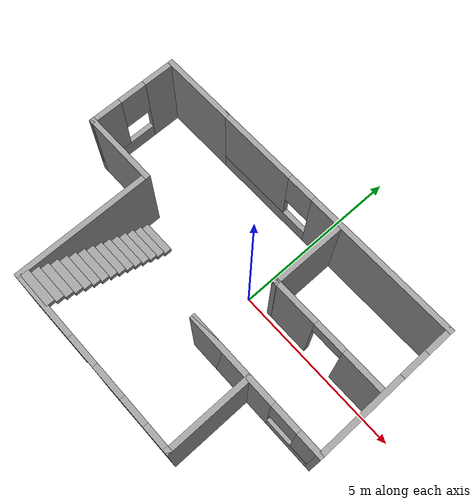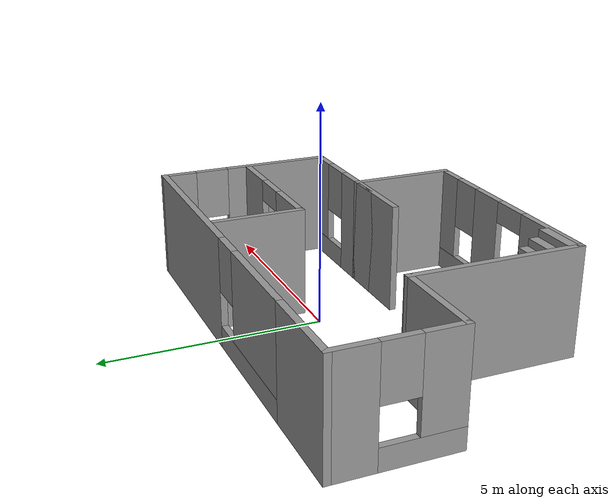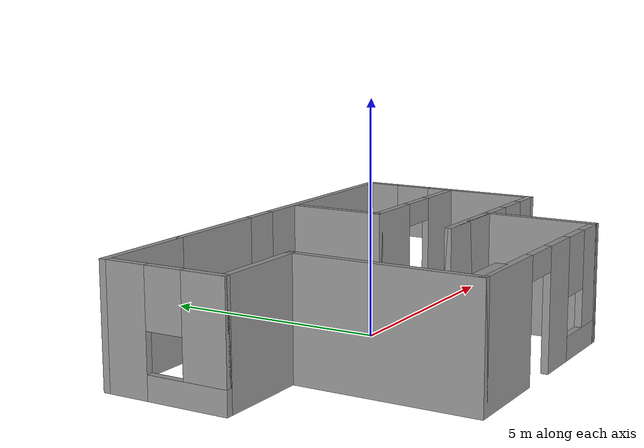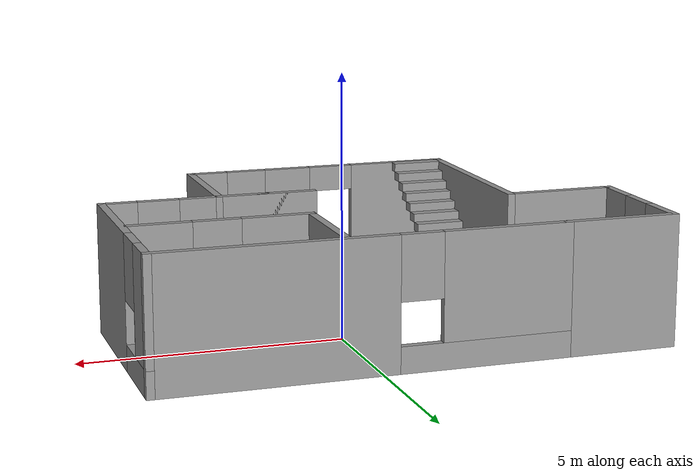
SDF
<?xml version='1.0'?>
<sdf version='1.7'>
  <model name='Building'>
    <pose>-0.724399 -0.913088 0 0 -0 0</pose>
    <link name='Stairs_0'>
      <visual name='Stairs_0_Visual_0'>
        <pose>-2.20765 0.182922 0.083333 0 -0 0</pose>
        <geometry>
          <box>
            <size>1 0.233333 0.166667</size>
          </box>
        </geometry>
        <material>
          <script>
            <uri>file://media/materials/scripts/gazebo.material</uri>
            <name>Gazebo/Grey</name>
          </script>
          <ambient>1 1 1 1</ambient>
        </material>
        <meta>
          <layer>0</layer>
        </meta>
      </visual>
      <collision name='Stairs_0_Collision_0'>
        <geometry>
          <box>
            <size>1 0.233333 0.166667</size>
          </box>
        </geometry>
        <pose>-2.20765 0.182922 0.083333 0 -0 0</pose>
      </collision>
      <visual name='Stairs_0_Visual_1'>
        <pose>-2.20765 -0.050412 0.25 0 -0 0</pose>
        <geometry>
          <box>
            <size>1 0.233333 0.166667</size>
          </box>
        </geometry>
        <material>
          <script>
            <uri>file://media/materials/scripts/gazebo.material</uri>
            <name>Gazebo/Grey</name>
          </script>
          <ambient>1 1 1 1</ambient>
        </material>
        <meta>
          <layer>0</layer>
        </meta>
      </visual>
      <collision name='Stairs_0_Collision_1'>
        <geometry>
          <box>
            <size>1 0.233333 0.166667</size>
          </box>
        </geometry>
        <pose>-2.20765 -0.050412 0.25 0 -0 0</pose>
      </collision>
      <visual name='Stairs_0_Visual_2'>
        <pose>-2.20765 -0.283745 0.416667 0 -0 0</pose>
        <geometry>
          <box>
            <size>1 0.233333 0.166667</size>
          </box>
        </geometry>
        <material>
          <script>
            <uri>file://media/materials/scripts/gazebo.material</uri>
            <name>Gazebo/Grey</name>
          </script>
          <ambient>1 1 1 1</ambient>
        </material>
        <meta>
          <layer>0</layer>
        </meta>
      </visual>
      <collision name='Stairs_0_Collision_2'>
        <geometry>
          <box>
            <size>1 0.233333 0.166667</size>
          </box>
        </geometry>
        <pose>-2.20765 -0.283745 0.416667 0 -0 0</pose>
      </collision>
      <visual name='Stairs_0_Visual_3'>
        <pose>-2.20765 -0.517078 0.583333 0 -0 0</pose>
        <geometry>
          <box>
            <size>1 0.233333 0.166667</size>
          </box>
        </geometry>
        <material>
          <script>
            <uri>file://media/materials/scripts/gazebo.material</uri>
            <name>Gazebo/Grey</name>
          </script>
          <ambient>1 1 1 1</ambient>
        </material>
        <meta>
          <layer>0</layer>
        </meta>
      </visual>
      <collision name='Stairs_0_Collision_3'>
        <geometry>
          <box>
            <size>1 0.233333 0.166667</size>
          </box>
        </geometry>
        <pose>-2.20765 -0.517078 0.583333 0 -0 0</pose>
      </collision>
      <visual name='Stairs_0_Visual_4'>
        <pose>-2.20765 -0.750412 0.75 0 -0 0</pose>
        <geometry>
          <box>
            <size>1 0.233333 0.166667</size>
          </box>
        </geometry>
        <material>
          <script>
            <uri>file://media/materials/scripts/gazebo.material</uri>
            <name>Gazebo/Grey</name>
          </script>
          <ambient>1 1 1 1</ambient>
        </material>
        <meta>
          <layer>0</layer>
        </meta>
      </visual>
      <collision name='Stairs_0_Collision_4'>
        <geometry>
          <box>
            <size>1 0.233333 0.166667</size>
          </box>
        </geometry>
        <pose>-2.20765 -0.750412 0.75 0 -0 0</pose>
      </collision>
      <visual name='Stairs_0_Visual_5'>
        <pose>-2.20765 -0.983745 0.916667 0 -0 0</pose>
        <geometry>
          <box>
            <size>1 0.233333 0.166667</size>
          </box>
        </geometry>
        <material>
          <script>
            <uri>file://media/materials/scripts/gazebo.material</uri>
            <name>Gazebo/Grey</name>
          </script>
          <ambient>1 1 1 1</ambient>
        </material>
        <meta>
          <layer>0</layer>
        </meta>
      </visual>
      <collision name='Stairs_0_Collision_5'>
        <geometry>
          <box>
            <size>1 0.233333 0.166667</size>
          </box>
        </geometry>
        <pose>-2.20765 -0.983745 0.916667 0 -0 0</pose>
      </collision>
      <visual name='Stairs_0_Visual_6'>
        <pose>-2.20765 -1.21708 1.08333 0 -0 0</pose>
        <geometry>
          <box>
            <size>1 0.233333 0.166667</size>
          </box>
        </geometry>
        <material>
          <script>
            <uri>file://media/materials/scripts/gazebo.material</uri>
            <name>Gazebo/Grey</name>
          </script>
          <ambient>1 1 1 1</ambient>
        </material>
        <meta>
          <layer>0</layer>
        </meta>
      </visual>
      <collision name='Stairs_0_Collision_6'>
        <geometry>
          <box>
            <size>1 0.233333 0.166667</size>
          </box>
        </geometry>
        <pose>-2.20765 -1.21708 1.08333 0 -0 0</pose>
      </collision>
      <visual name='Stairs_0_Visual_7'>
        <pose>-2.20765 -1.45041 1.25 0 -0 0</pose>
        <geometry>
          <box>
            <size>1 0.233333 0.166667</size>
          </box>
        </geometry>
        <material>
          <script>
            <uri>file://media/materials/scripts/gazebo.material</uri>
            <name>Gazebo/Grey</name>
          </script>
          <ambient>1 1 1 1</ambient>
        </material>
        <meta>
          <layer>0</layer>
        </meta>
      </visual>
      <collision name='Stairs_0_Collision_7'>
        <geometry>
          <box>
            <size>1 0.233333 0.166667</size>
          </box>
        </geometry>
        <pose>-2.20765 -1.45041 1.25 0 -0 0</pose>
      </collision>
      <visual name='Stairs_0_Visual_8'>
        <pose>-2.20765 -1.68375 1.41667 0 -0 0</pose>
        <geometry>
          <box>
            <size>1 0.233333 0.166667</size>
          </box>
        </geometry>
        <material>
          <script>
            <uri>file://media/materials/scripts/gazebo.material</uri>
            <name>Gazebo/Grey</name>
          </script>
          <ambient>1 1 1 1</ambient>
        </material>
        <meta>
          <layer>0</layer>
        </meta>
      </visual>
      <collision name='Stairs_0_Collision_8'>
        <geometry>
          <box>
            <size>1 0.233333 0.166667</size>
          </box>
        </geometry>
        <pose>-2.20765 -1.68375 1.41667 0 -0 0</pose>
      </collision>
      <visual name='Stairs_0_Visual_9'>
        <pose>-2.20765 -1.91708 1.58333 0 -0 0</pose>
        <geometry>
          <box>
            <size>1 0.233333 0.166667</size>
          </box>
        </geometry>
        <material>
          <script>
            <uri>file://media/materials/scripts/gazebo.material</uri>
            <name>Gazebo/Grey</name>
          </script>
          <ambient>1 1 1 1</ambient>
        </material>
        <meta>
          <layer>0</layer>
        </meta>
      </visual>
      <collision name='Stairs_0_Collision_9'>
        <geometry>
          <box>
            <size>1 0.233333 0.166667</size>
          </box>
        </geometry>
        <pose>-2.20765 -1.91708 1.58333 0 -0 0</pose>
      </collision>
      <visual name='Stairs_0_Visual_10'>
        <pose>-2.20765 -2.15041 1.75 0 -0 0</pose>
        <geometry>
          <box>
            <size>1 0.233333 0.166667</size>
          </box>
        </geometry>
        <material>
          <script>
            <uri>file://media/materials/scripts/gazebo.material</uri>
            <name>Gazebo/Grey</name>
          </script>
          <ambient>1 1 1 1</ambient>
        </material>
        <meta>
          <layer>0</layer>
        </meta>
      </visual>
      <collision name='Stairs_0_Collision_10'>
        <geometry>
          <box>
            <size>1 0.233333 0.166667</size>
          </box>
        </geometry>
        <pose>-2.20765 -2.15041 1.75 0 -0 0</pose>
      </collision>
      <visual name='Stairs_0_Visual_11'>
        <pose>-2.20765 -2.38374 1.91667 0 -0 0</pose>
        <geometry>
          <box>
            <size>1 0.233333 0.166667</size>
          </box>
        </geometry>
        <material>
          <script>
            <uri>file://media/materials/scripts/gazebo.material</uri>
            <name>Gazebo/Grey</name>
          </script>
          <ambient>1 1 1 1</ambient>
        </material>
        <meta>
          <layer>0</layer>
        </meta>
      </visual>
      <collision name='Stairs_0_Collision_11'>
        <geometry>
          <box>
            <size>1 0.233333 0.166667</size>
          </box>
        </geometry>
        <pose>-2.20765 -2.38374 1.91667 0 -0 0</pose>
      </collision>
      <visual name='Stairs_0_Visual_12'>
        <pose>-2.20765 -2.61708 2.08333 0 -0 0</pose>
        <geometry>
          <box>
            <size>1 0.233333 0.166667</size>
          </box>
        </geometry>
        <material>
          <script>
            <uri>file://media/materials/scripts/gazebo.material</uri>
            <name>Gazebo/Grey</name>
          </script>
          <ambient>1 1 1 1</ambient>
        </material>
        <meta>
          <layer>0</layer>
        </meta>
      </visual>
      <collision name='Stairs_0_Collision_12'>
        <geometry>
          <box>
            <size>1 0.233333 0.166667</size>
          </box>
        </geometry>
        <pose>-2.20765 -2.61708 2.08333 0 -0 0</pose>
      </collision>
      <visual name='Stairs_0_Visual_13'>
        <pose>-2.20765 -2.85041 2.25 0 -0 0</pose>
        <geometry>
          <box>
            <size>1 0.233333 0.166667</size>
          </box>
        </geometry>
        <material>
          <script>
            <uri>file://media/materials/scripts/gazebo.material</uri>
            <name>Gazebo/Grey</name>
          </script>
          <ambient>1 1 1 1</ambient>
        </material>
        <meta>
          <layer>0</layer>
        </meta>
      </visual>
      <collision name='Stairs_0_Collision_13'>
        <geometry>
          <box>
            <size>1 0.233333 0.166667</size>
          </box>
        </geometry>
        <pose>-2.20765 -2.85041 2.25 0 -0 0</pose>
      </collision>
      <visual name='Stairs_0_Visual_14'>
        <pose>-2.20765 -3.08374 2.41667 0 -0 0</pose>
        <geometry>
          <box>
            <size>1 0.233333 0.166667</size>
          </box>
        </geometry>
        <material>
          <script>
            <uri>file://media/materials/scripts/gazebo.material</uri>
            <name>Gazebo/Grey</name>
          </script>
          <ambient>1 1 1 1</ambient>
        </material>
        <meta>
          <layer>0</layer>
        </meta>
      </visual>
      <collision name='Stairs_0_Collision_14'>
        <geometry>
          <box>
            <size>1 0.233333 0.166667</size>
          </box>
        </geometry>
        <pose>-2.20765 -3.08374 2.41667 0 -0 0</pose>
      </collision>
    </link>
    <link name='Wall_0'>
      <collision name='Wall_0_Collision'>
        <geometry>
          <box>
            <size>4 0.15 2.5</size>
          </box>
        </geometry>
        <pose>0 0 1.25 0 -0 0</pose>
      </collision>
      <visual name='Wall_0_Visual'>
        <pose>0 0 1.25 0 -0 0</pose>
        <geometry>
          <box>
            <size>4 0.15 2.5</size>
          </box>
        </geometry>
        <material>
          <script>
            <uri>file://media/materials/scripts/gazebo.material</uri>
            <name>Gazebo/Grey</name>
          </script>
          <ambient>1 1 1 1</ambient>
        </material>
        <meta>
          <layer>0</layer>
        </meta>
      </visual>
      <pose>-2.76 -1.3 0 0 -0 -1.5708</pose>
    </link>
    <link name='Wall_10'>
      <pose>-4.85 1.925 0 0 -0 -1.5708</pose>
      <visual name='Wall_10_Visual_0'>
        <pose>-0.867719 0 1.25 0 -0 0</pose>
        <geometry>
          <box>
            <size>1.01456 0.15 2.5</size>
          </box>
        </geometry>
        <material>
          <script>
            <uri>file://media/materials/scripts/gazebo.material</uri>
            <name>Gazebo/Grey</name>
          </script>
          <ambient>1 1 1 1</ambient>
        </material>
        <meta>
          <layer>0</layer>
        </meta>
      </visual>
      <collision name='Wall_10_Collision_0'>
        <geometry>
          <box>
            <size>1.01456 0.15 2.5</size>
          </box>
        </geometry>
        <pose>-0.867719 0 1.25 0 -0 0</pose>
      </collision>
      <visual name='Wall_10_Visual_1'>
        <pose>0.507281 0 0.25 0 -0 0</pose>
        <geometry>
          <box>
            <size>1.73544 0.15 0.5</size>
          </box>
        </geometry>
        <material>
          <script>
            <uri>file://media/materials/scripts/gazebo.material</uri>
            <name>Gazebo/Grey</name>
          </script>
          <ambient>1 1 1 1</ambient>
        </material>
        <meta>
          <layer>0</layer>
        </meta>
      </visual>
      <collision name='Wall_10_Collision_1'>
        <geometry>
          <box>
            <size>1.73544 0.15 0.5</size>
          </box>
        </geometry>
        <pose>0.507281 0 0.25 0 -0 0</pose>
      </collision>
      <visual name='Wall_10_Visual_2'>
        <pose>0.907281 0 1.5 0 -0 0</pose>
        <geometry>
          <box>
            <size>0.935438 0.15 2</size>
          </box>
        </geometry>
        <material>
          <script>
            <uri>file://media/materials/scripts/gazebo.material</uri>
            <name>Gazebo/Grey</name>
          </script>
          <ambient>1 1 1 1</ambient>
        </material>
        <meta>
          <layer>0</layer>
        </meta>
      </visual>
      <collision name='Wall_10_Collision_2'>
        <geometry>
          <box>
            <size>0.935438 0.15 2</size>
          </box>
        </geometry>
        <pose>0.907281 0 1.5 0 -0 0</pose>
      </collision>
      <visual name='Wall_10_Visual_3'>
        <pose>0.039562 0 1.9 0 -0 0</pose>
        <geometry>
          <box>
            <size>0.8 0.15 1.2</size>
          </box>
        </geometry>
        <material>
          <script>
            <uri>file://media/materials/scripts/gazebo.material</uri>
            <name>Gazebo/Grey</name>
          </script>
          <ambient>1 1 1 1</ambient>
        </material>
        <meta>
          <layer>0</layer>
        </meta>
      </visual>
      <collision name='Wall_10_Collision_3'>
        <geometry>
          <box>
            <size>0.8 0.15 1.2</size>
          </box>
        </geometry>
        <pose>0.039562 0 1.9 0 -0 0</pose>
      </collision>
    </link>
    <link name='Wall_11'>
      <collision name='Wall_11_Collision'>
        <geometry>
          <box>
            <size>2.24 0.15 2.5</size>
          </box>
        </geometry>
        <pose>0 0 1.25 0 -0 0</pose>
      </collision>
      <visual name='Wall_11_Visual'>
        <pose>0 0 1.25 0 -0 0</pose>
        <geometry>
          <box>
            <size>2.24 0.15 2.5</size>
          </box>
        </geometry>
        <material>
          <script>
            <uri>file://media/materials/scripts/gazebo.material</uri>
            <name>Gazebo/Grey</name>
          </script>
          <ambient>1 1 1 1</ambient>
        </material>
        <meta>
          <layer>0</layer>
        </meta>
      </visual>
      <pose>-3.805 0.625 0 0 -0 0</pose>
    </link>
    <link name='Wall_2'>
      <pose>-0.085 -3.225 0 0 -0 0</pose>
      <visual name='Wall_2_Visual_0'>
        <pose>-1.73077 0 1.25 0 -0 0</pose>
        <geometry>
          <box>
            <size>2.03845 0.15 2.5</size>
          </box>
        </geometry>
        <material>
          <script>
            <uri>file://media/materials/scripts/gazebo.material</uri>
            <name>Gazebo/Grey</name>
          </script>
          <ambient>1 1 1 1</ambient>
        </material>
        <meta>
          <layer>0</layer>
        </meta>
      </visual>
      <collision name='Wall_2_Collision_0'>
        <geometry>
          <box>
            <size>2.03845 0.15 2.5</size>
          </box>
        </geometry>
        <pose>-1.73077 0 1.25 0 -0 0</pose>
      </collision>
      <visual name='Wall_2_Visual_1'>
        <pose>0.667406 0 1.25 0 -0 0</pose>
        <geometry>
          <box>
            <size>0.957909 0.15 2.5</size>
          </box>
        </geometry>
        <material>
          <script>
            <uri>file://media/materials/scripts/gazebo.material</uri>
            <name>Gazebo/Grey</name>
          </script>
          <ambient>1 1 1 1</ambient>
        </material>
        <meta>
          <layer>0</layer>
        </meta>
      </visual>
      <collision name='Wall_2_Collision_1'>
        <geometry>
          <box>
            <size>0.957909 0.15 2.5</size>
          </box>
        </geometry>
        <pose>0.667406 0 1.25 0 -0 0</pose>
      </collision>
      <visual name='Wall_2_Visual_2'>
        <pose>1.94818 0 0.25 0 -0 0</pose>
        <geometry>
          <box>
            <size>1.60364 0.15 0.5</size>
          </box>
        </geometry>
        <material>
          <script>
            <uri>file://media/materials/scripts/gazebo.material</uri>
            <name>Gazebo/Grey</name>
          </script>
          <ambient>1 1 1 1</ambient>
        </material>
        <meta>
          <layer>0</layer>
        </meta>
      </visual>
      <collision name='Wall_2_Collision_2'>
        <geometry>
          <box>
            <size>1.60364 0.15 0.5</size>
          </box>
        </geometry>
        <pose>1.94818 0 0.25 0 -0 0</pose>
      </collision>
      <visual name='Wall_2_Visual_3'>
        <pose>2.34818 0 1.5 0 -0 0</pose>
        <geometry>
          <box>
            <size>0.80364 0.15 2</size>
          </box>
        </geometry>
        <material>
          <script>
            <uri>file://media/materials/scripts/gazebo.material</uri>
            <name>Gazebo/Grey</name>
          </script>
          <ambient>1 1 1 1</ambient>
        </material>
        <meta>
          <layer>0</layer>
        </meta>
      </visual>
      <collision name='Wall_2_Collision_3'>
        <geometry>
          <box>
            <size>0.80364 0.15 2</size>
          </box>
        </geometry>
        <pose>2.34818 0 1.5 0 -0 0</pose>
      </collision>
      <visual name='Wall_2_Visual_4'>
        <pose>1.54636 0 1.9 0 -0 0</pose>
        <geometry>
          <box>
            <size>0.8 0.15 1.2</size>
          </box>
        </geometry>
        <material>
          <script>
            <uri>file://media/materials/scripts/gazebo.material</uri>
            <name>Gazebo/Grey</name>
          </script>
          <ambient>1 1 1 1</ambient>
        </material>
        <meta>
          <layer>0</layer>
        </meta>
      </visual>
      <collision name='Wall_2_Collision_4'>
        <geometry>
          <box>
            <size>0.8 0.15 1.2</size>
          </box>
        </geometry>
        <pose>1.54636 0 1.9 0 -0 0</pose>
      </collision>
      <visual name='Wall_2_Visual_5'>
        <pose>-0.261548 0 2.25 0 -0 0</pose>
        <geometry>
          <box>
            <size>0.9 0.15 0.5</size>
          </box>
        </geometry>
        <material>
          <script>
            <uri>file://media/materials/scripts/gazebo.material</uri>
            <name>Gazebo/Grey</name>
          </script>
          <ambient>1 1 1 1</ambient>
        </material>
        <meta>
          <layer>0</layer>
        </meta>
      </visual>
      <collision name='Wall_2_Collision_5'>
        <geometry>
          <box>
            <size>0.9 0.15 0.5</size>
          </box>
        </geometry>
        <pose>-0.261548 0 2.25 0 -0 0</pose>
      </collision>
    </link>
    <link name='Wall_23'>
      <collision name='Wall_23_Collision'>
        <geometry>
          <box>
            <size>2.25 0.15 2.5</size>
          </box>
        </geometry>
        <pose>0 0 1.25 0 -0 0</pose>
      </collision>
      <visual name='Wall_23_Visual'>
        <pose>0 0 1.25 0 -0 0</pose>
        <geometry>
          <box>
            <size>2.25 0.15 2.5</size>
          </box>
        </geometry>
        <material>
          <script>
            <uri>file://media/materials/scripts/gazebo.material</uri>
            <name>Gazebo/Grey</name>
          </script>
          <ambient>1 1 1 1</ambient>
        </material>
        <meta>
          <layer>0</layer>
        </meta>
      </visual>
      <pose>1.37088 2.16086 0 0 -0 -1.5708</pose>
    </link>
    <link name='Wall_24'>
      <collision name='Wall_24_Collision'>
        <geometry>
          <box>
            <size>0.16 0.15 2.5</size>
          </box>
        </geometry>
        <pose>0 0 1.25 0 -0 0</pose>
      </collision>
      <visual name='Wall_24_Visual'>
        <pose>0 0 1.25 0 -0 0</pose>
        <geometry>
          <box>
            <size>0.16 0.15 2.5</size>
          </box>
        </geometry>
        <material>
          <script>
            <uri>file://media/materials/scripts/gazebo.material</uri>
            <name>Gazebo/Grey</name>
          </script>
          <ambient>1 1 1 1</ambient>
        </material>
        <meta>
          <layer>0</layer>
        </meta>
      </visual>
      <pose>1.37588 1.11086 0 0 -0 0</pose>
    </link>
    <link name='Wall_25'>
      <pose>3.05588 1.11086 0 0 -0 0</pose>
      <visual name='Wall_25_Visual_0'>
        <pose>-1.05753 0 1.25 0 -0 0</pose>
        <geometry>
          <box>
            <size>1.38493 0.15 2.5</size>
          </box>
        </geometry>
        <material>
          <script>
            <uri>file://media/materials/scripts/gazebo.material</uri>
            <name>Gazebo/Grey</name>
          </script>
          <ambient>1 1 1 1</ambient>
        </material>
        <meta>
          <layer>0</layer>
        </meta>
      </visual>
      <collision name='Wall_25_Collision_0'>
        <geometry>
          <box>
            <size>1.38493 0.15 2.5</size>
          </box>
        </geometry>
        <pose>-1.05753 0 1.25 0 -0 0</pose>
      </collision>
      <visual name='Wall_25_Visual_1'>
        <pose>1.14247 0 1.25 0 -0 0</pose>
        <geometry>
          <box>
            <size>1.21507 0.15 2.5</size>
          </box>
        </geometry>
        <material>
          <script>
            <uri>file://media/materials/scripts/gazebo.material</uri>
            <name>Gazebo/Grey</name>
          </script>
          <ambient>1 1 1 1</ambient>
        </material>
        <meta>
          <layer>0</layer>
        </meta>
      </visual>
      <collision name='Wall_25_Collision_1'>
        <geometry>
          <box>
            <size>1.21507 0.15 2.5</size>
          </box>
        </geometry>
        <pose>1.14247 0 1.25 0 -0 0</pose>
      </collision>
      <visual name='Wall_25_Visual_2'>
        <pose>0.084929 0 2.25 0 -0 0</pose>
        <geometry>
          <box>
            <size>0.9 0.15 0.5</size>
          </box>
        </geometry>
        <material>
          <script>
            <uri>file://media/materials/scripts/gazebo.material</uri>
            <name>Gazebo/Grey</name>
          </script>
          <ambient>1 1 1 1</ambient>
        </material>
        <meta>
          <layer>0</layer>
        </meta>
      </visual>
      <collision name='Wall_25_Collision_2'>
        <geometry>
          <box>
            <size>0.9 0.15 0.5</size>
          </box>
        </geometry>
        <pose>0.084929 0 2.25 0 -0 0</pose>
      </collision>
    </link>
    <link name='Wall_3'>
      <collision name='Wall_3_Collision'>
        <geometry>
          <box>
            <size>0.16 0.15 2.5</size>
          </box>
        </geometry>
        <pose>0 0 1.25 0 -0 0</pose>
      </collision>
      <visual name='Wall_3_Visual'>
        <pose>0 0 1.25 0 -0 0</pose>
        <geometry>
          <box>
            <size>0.16 0.15 2.5</size>
          </box>
        </geometry>
        <material>
          <script>
            <uri>file://media/materials/scripts/gazebo.material</uri>
            <name>Gazebo/Grey</name>
          </script>
          <ambient>1 1 1 1</ambient>
        </material>
        <meta>
          <layer>0</layer>
        </meta>
      </visual>
      <pose>2.595 -3.225 0 0 -0 0</pose>
    </link>
    <link name='Wall_4'>
      <collision name='Wall_4_Collision'>
        <geometry>
          <box>
            <size>2.5 0.15 2.5</size>
          </box>
        </geometry>
        <pose>0 0 1.25 0 -0 0</pose>
      </collision>
      <visual name='Wall_4_Visual'>
        <pose>0 0 1.25 0 -0 0</pose>
        <geometry>
          <box>
            <size>2.5 0.15 2.5</size>
          </box>
        </geometry>
        <material>
          <script>
            <uri>file://media/materials/scripts/gazebo.material</uri>
            <name>Gazebo/Grey</name>
          </script>
          <ambient>1 1 1 1</ambient>
        </material>
        <meta>
          <layer>0</layer>
        </meta>
      </visual>
      <pose>2.6 -2.05 0 0 -0 1.5708</pose>
    </link>
    <link name='Wall_5'>
      <collision name='Wall_5_Collision'>
        <geometry>
          <box>
            <size>2 0.15 2.5</size>
          </box>
        </geometry>
        <pose>0 0 1.25 0 -0 0</pose>
      </collision>
      <visual name='Wall_5_Visual'>
        <pose>0 0 1.25 0 -0 0</pose>
        <geometry>
          <box>
            <size>2 0.15 2.5</size>
          </box>
        </geometry>
        <material>
          <script>
            <uri>file://media/materials/scripts/gazebo.material</uri>
            <name>Gazebo/Grey</name>
          </script>
          <ambient>1 1 1 1</ambient>
        </material>
        <meta>
          <layer>0</layer>
        </meta>
      </visual>
      <pose>1.675 -0.875 0 0 -0 3.14159</pose>
    </link>
    <link name='Wall_6'>
      <pose>2.8 -0.875 0 0 -0 0</pose>
      <visual name='Wall_6_Visual_0'>
        <pose>-0.772029 0 1.25 0 -0 0</pose>
        <geometry>
          <box>
            <size>2.70594 0.15 2.5</size>
          </box>
        </geometry>
        <material>
          <script>
            <uri>file://media/materials/scripts/gazebo.material</uri>
            <name>Gazebo/Grey</name>
          </script>
          <ambient>1 1 1 1</ambient>
        </material>
        <meta>
          <layer>0</layer>
        </meta>
      </visual>
      <collision name='Wall_6_Collision_0'>
        <geometry>
          <box>
            <size>2.70594 0.15 2.5</size>
          </box>
        </geometry>
        <pose>-0.772029 0 1.25 0 -0 0</pose>
      </collision>
      <visual name='Wall_6_Visual_1'>
        <pose>1.35297 0 0.25 0 -0 0</pose>
        <geometry>
          <box>
            <size>1.54406 0.15 0.5</size>
          </box>
        </geometry>
        <material>
          <script>
            <uri>file://media/materials/scripts/gazebo.material</uri>
            <name>Gazebo/Grey</name>
          </script>
          <ambient>1 1 1 1</ambient>
        </material>
        <meta>
          <layer>0</layer>
        </meta>
      </visual>
      <collision name='Wall_6_Collision_1'>
        <geometry>
          <box>
            <size>1.54406 0.15 0.5</size>
          </box>
        </geometry>
        <pose>1.35297 0 0.25 0 -0 0</pose>
      </collision>
      <visual name='Wall_6_Visual_2'>
        <pose>1.75297 0 1.5 0 -0 0</pose>
        <geometry>
          <box>
            <size>0.744058 0.15 2</size>
          </box>
        </geometry>
        <material>
          <script>
            <uri>file://media/materials/scripts/gazebo.material</uri>
            <name>Gazebo/Grey</name>
          </script>
          <ambient>1 1 1 1</ambient>
        </material>
        <meta>
          <layer>0</layer>
        </meta>
      </visual>
      <collision name='Wall_6_Collision_2'>
        <geometry>
          <box>
            <size>0.744058 0.15 2</size>
          </box>
        </geometry>
        <pose>1.75297 0 1.5 0 -0 0</pose>
      </collision>
      <visual name='Wall_6_Visual_3'>
        <pose>0.980942 0 1.9 0 -0 0</pose>
        <geometry>
          <box>
            <size>0.8 0.15 1.2</size>
          </box>
        </geometry>
        <material>
          <script>
            <uri>file://media/materials/scripts/gazebo.material</uri>
            <name>Gazebo/Grey</name>
          </script>
          <ambient>1 1 1 1</ambient>
        </material>
        <meta>
          <layer>0</layer>
        </meta>
      </visual>
      <collision name='Wall_6_Collision_3'>
        <geometry>
          <box>
            <size>0.8 0.15 1.2</size>
          </box>
        </geometry>
        <pose>0.980942 0 1.9 0 -0 0</pose>
      </collision>
    </link>
    <link name='Wall_7'>
      <pose>4.85 1.175 0 0 -0 1.5708</pose>
      <visual name='Wall_7_Visual_0'>
        <pose>-0.822002 0 1.25 0 -0 0</pose>
        <geometry>
          <box>
            <size>2.606 0.15 2.5</size>
          </box>
        </geometry>
        <material>
          <script>
            <uri>file://media/materials/scripts/gazebo.material</uri>
            <name>Gazebo/Grey</name>
          </script>
          <ambient>1 1 1 1</ambient>
        </material>
        <meta>
          <layer>0</layer>
        </meta>
      </visual>
      <collision name='Wall_7_Collision_0'>
        <geometry>
          <box>
            <size>2.606 0.15 2.5</size>
          </box>
        </geometry>
        <pose>-0.822002 0 1.25 0 -0 0</pose>
      </collision>
      <visual name='Wall_7_Visual_1'>
        <pose>1.303 0 0.25 0 -0 0</pose>
        <geometry>
          <box>
            <size>1.644 0.15 0.5</size>
          </box>
        </geometry>
        <material>
          <script>
            <uri>file://media/materials/scripts/gazebo.material</uri>
            <name>Gazebo/Grey</name>
          </script>
          <ambient>1 1 1 1</ambient>
        </material>
        <meta>
          <layer>0</layer>
        </meta>
      </visual>
      <collision name='Wall_7_Collision_1'>
        <geometry>
          <box>
            <size>1.644 0.15 0.5</size>
          </box>
        </geometry>
        <pose>1.303 0 0.25 0 -0 0</pose>
      </collision>
      <visual name='Wall_7_Visual_2'>
        <pose>1.703 0 1.5 0 -0 0</pose>
        <geometry>
          <box>
            <size>0.844004 0.15 2</size>
          </box>
        </geometry>
        <material>
          <script>
            <uri>file://media/materials/scripts/gazebo.material</uri>
            <name>Gazebo/Grey</name>
          </script>
          <ambient>1 1 1 1</ambient>
        </material>
        <meta>
          <layer>0</layer>
        </meta>
      </visual>
      <collision name='Wall_7_Collision_2'>
        <geometry>
          <box>
            <size>0.844004 0.15 2</size>
          </box>
        </geometry>
        <pose>1.703 0 1.5 0 -0 0</pose>
      </collision>
      <visual name='Wall_7_Visual_3'>
        <pose>0.880996 0 1.9 0 -0 0</pose>
        <geometry>
          <box>
            <size>0.8 0.15 1.2</size>
          </box>
        </geometry>
        <material>
          <script>
            <uri>file://media/materials/scripts/gazebo.material</uri>
            <name>Gazebo/Grey</name>
          </script>
          <ambient>1 1 1 1</ambient>
        </material>
        <meta>
          <layer>0</layer>
        </meta>
      </visual>
      <collision name='Wall_7_Collision_3'>
        <geometry>
          <box>
            <size>0.8 0.15 1.2</size>
          </box>
        </geometry>
        <pose>0.880996 0 1.9 0 -0 0</pose>
      </collision>
    </link>
    <link name='Wall_8'>
      <pose>1.05 3.225 0 0 -0 3.14159</pose>
      <visual name='Wall_8_Visual_0'>
        <pose>-1.62684 0 1.25 0 -0 0</pose>
        <geometry>
          <box>
            <size>4.49632 0.15 2.5</size>
          </box>
        </geometry>
        <material>
          <script>
            <uri>file://media/materials/scripts/gazebo.material</uri>
            <name>Gazebo/Grey</name>
          </script>
          <ambient>1 1 1 1</ambient>
        </material>
        <meta>
          <layer>0</layer>
        </meta>
      </visual>
      <collision name='Wall_8_Collision_0'>
        <geometry>
          <box>
            <size>4.49632 0.15 2.5</size>
          </box>
        </geometry>
        <pose>-1.62684 0 1.25 0 -0 0</pose>
      </collision>
      <visual name='Wall_8_Visual_1'>
        <pose>2.24816 0 0.25 0 -0 0</pose>
        <geometry>
          <box>
            <size>3.25368 0.15 0.5</size>
          </box>
        </geometry>
        <material>
          <script>
            <uri>file://media/materials/scripts/gazebo.material</uri>
            <name>Gazebo/Grey</name>
          </script>
          <ambient>1 1 1 1</ambient>
        </material>
        <meta>
          <layer>0</layer>
        </meta>
      </visual>
      <collision name='Wall_8_Collision_1'>
        <geometry>
          <box>
            <size>3.25368 0.15 0.5</size>
          </box>
        </geometry>
        <pose>2.24816 0 0.25 0 -0 0</pose>
      </collision>
      <visual name='Wall_8_Visual_2'>
        <pose>2.64816 0 1.5 0 -0 0</pose>
        <geometry>
          <box>
            <size>2.45368 0.15 2</size>
          </box>
        </geometry>
        <material>
          <script>
            <uri>file://media/materials/scripts/gazebo.material</uri>
            <name>Gazebo/Grey</name>
          </script>
          <ambient>1 1 1 1</ambient>
        </material>
        <meta>
          <layer>0</layer>
        </meta>
      </visual>
      <collision name='Wall_8_Collision_2'>
        <geometry>
          <box>
            <size>2.45368 0.15 2</size>
          </box>
        </geometry>
        <pose>2.64816 0 1.5 0 -0 0</pose>
      </collision>
      <visual name='Wall_8_Visual_3'>
        <pose>1.02132 0 1.9 0 -0 0</pose>
        <geometry>
          <box>
            <size>0.8 0.15 1.2</size>
          </box>
        </geometry>
        <material>
          <script>
            <uri>file://media/materials/scripts/gazebo.material</uri>
            <name>Gazebo/Grey</name>
          </script>
          <ambient>1 1 1 1</ambient>
        </material>
        <meta>
          <layer>0</layer>
        </meta>
      </visual>
      <collision name='Wall_8_Collision_3'>
        <geometry>
          <box>
            <size>0.8 0.15 1.2</size>
          </box>
        </geometry>
        <pose>1.02132 0 1.9 0 -0 0</pose>
      </collision>
    </link>
    <link name='Wall_9'>
      <collision name='Wall_9_Collision'>
        <geometry>
          <box>
            <size>2.25 0.15 2.5</size>
          </box>
        </geometry>
        <pose>0 0 1.25 0 -0 0</pose>
      </collision>
      <visual name='Wall_9_Visual'>
        <pose>0 0 1.25 0 -0 0</pose>
        <geometry>
          <box>
            <size>2.25 0.15 2.5</size>
          </box>
        </geometry>
        <material>
          <script>
            <uri>file://media/materials/scripts/gazebo.material</uri>
            <name>Gazebo/Grey</name>
          </script>
          <ambient>1 1 1 1</ambient>
        </material>
        <meta>
          <layer>0</layer>
        </meta>
      </visual>
      <pose>-3.8 3.225 0 0 -0 3.14159</pose>
    </link>
    <static>1</static>
  </model>
</sdf>
